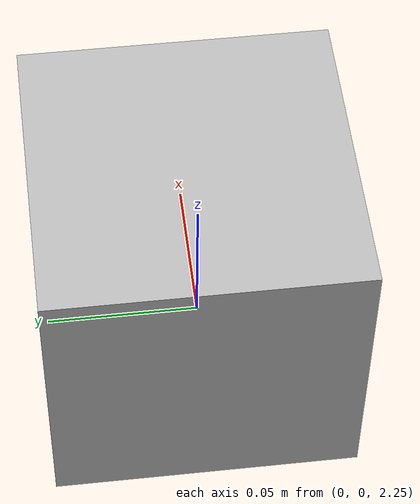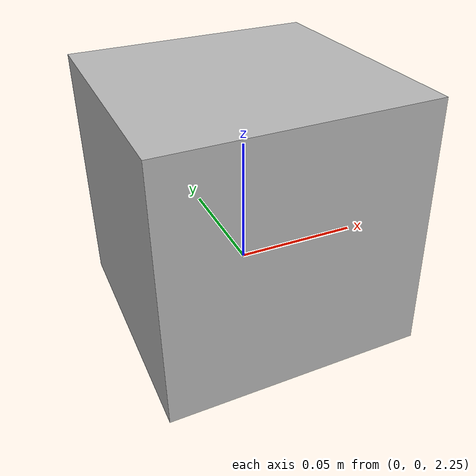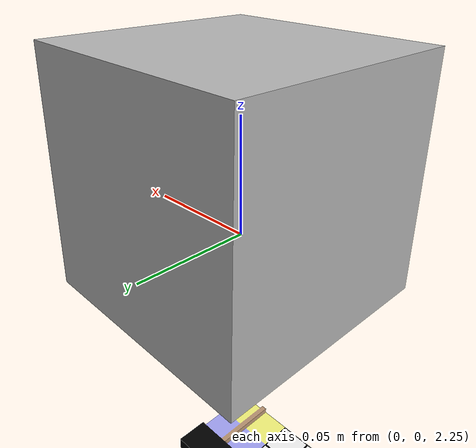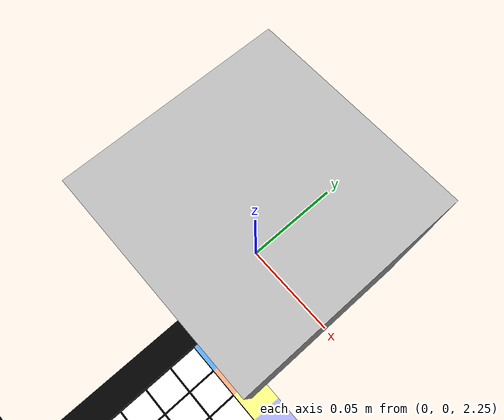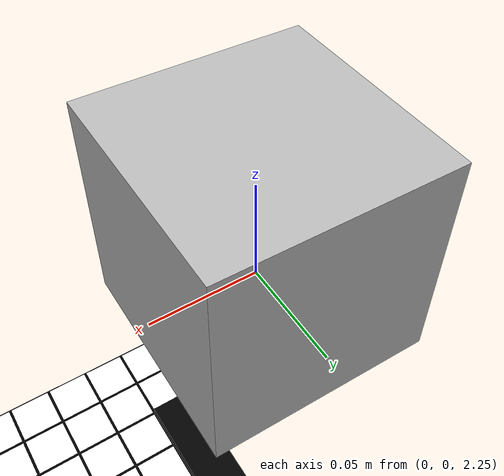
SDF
<?xml version="1.0"?>

<sdf version="1.5">
    <world name="default">
        <!-- A global light source -->
        <include>
            <uri>model://sun</uri>
        </include>

        <!-- A ground plane -->
        <include>
            <uri>model://ground_plane</uri>
        </include>
        <include>
            <uri>model://arena</uri>
        </include>
<!-- camera -->
        <include>
                <uri>model://lifecam</uri>
            <static>true</static>
            <pose>0 0 0 0 0 0</pose>
        </include>

    </world>
</sdf>

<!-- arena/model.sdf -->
<sdf version='1.4'>
  <model name="arena">
    <static>true</static>
    <pose>-1.035247 0.758715 -1.145319 0 0 0 </pose>

    <link name="arena">
        <pose>0 0 0.02 0 0 0</pose>
    <collision name="collision">
        <geometry>
          <mesh>
              <uri>model://arena/meshes/arena_v2.dae</uri>
          </mesh>
        </geometry>
      </collision>
    <visual name="visual">
        <geometry>
          <mesh>
                  <uri>model://arena/meshes/arena_v2.dae</uri>
                  <lighting>1</lighting>
          </mesh>
        </geometry>
      </visual>
    </link>

  </model>
</sdf>

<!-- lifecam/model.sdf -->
<sdf version="1.5">
    <model name="distorted_camera">
        <static>true</static>
        <link name='cam_link'>
            <pose>0 0.002195 2.276452 -0 1.552942 0</pose>
            <inertial>
                <mass>0.1</mass>
                <inertia>
                    <ixx>1</ixx>
                    <ixy>0</ixy>
                    <ixz>0</ixz>
                    <iyy>1</iyy>
                    <iyz>0</iyz>
                    <izz>1</izz>
                </inertia>
                <pose frame=''>0 0 0 0 -0 0</pose>
            </inertial>
            <collision name="collision">
                <geometry>
                    <box>
                        <size>0.1 0.1 0.1</size>
                    </box>
                </geometry>
            </collision>
            <visual name="visual">
                <geometry>
                    <box>
                        <size>0.1 0.1 0.1</size>
                    </box>
                </geometry>
            </visual>
            <self_collide>0</self_collide>
            <kinematic>0</kinematic>
            <sensor name='camera1' type='camera'>
                <camera name="head">
                    <horizontal_fov>1.3962634</horizontal_fov>
                    <image>
                        <width>800</width>
                        <height>800</height>
                        <format>R8G8B8</format>
                    </image>
                    <clip>
                        <near>0.02</near>
                        <far>300</far>
                    </clip>
                </camera>
                <always_on>1</always_on>
                <update_rate>30</update_rate>
                <visualize>1</visualize>
                <plugin name="camera_controller" filename="libgazebo_ros_camera.so">
                    <alwaysOn>true</alwaysOn>
                    <updateRate>0.0</updateRate>
                    <cameraName>camera</cameraName>
                    <imageTopicName>image_raw</imageTopicName>
                    <cameraInfoTopicName>camera_info</cameraInfoTopicName>
                    <frameName>camera_link</frameName>
                    <hackBaseline>0.07</hackBaseline>
                    <distortionK1>0.0</distortionK1>
                    <distortionK2>0.0</distortionK2>
                    <distortionK3>0.0</distortionK3>
                    <distortionT1>0.0</distortionT1>
                    <distortionT2>0.0</distortionT2>
                </plugin>
            </sensor>
        </link>
    </model>
</sdf>
